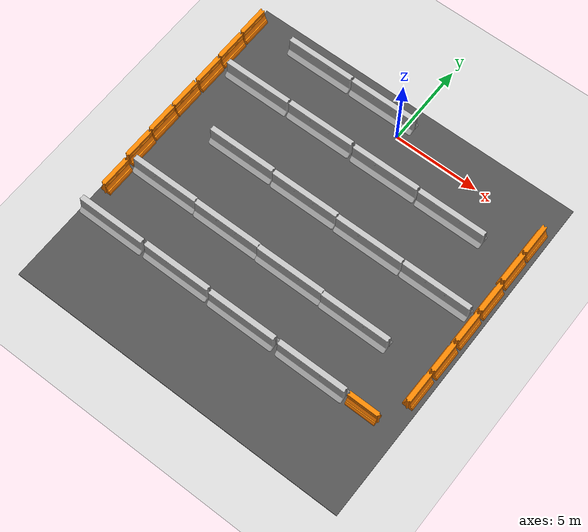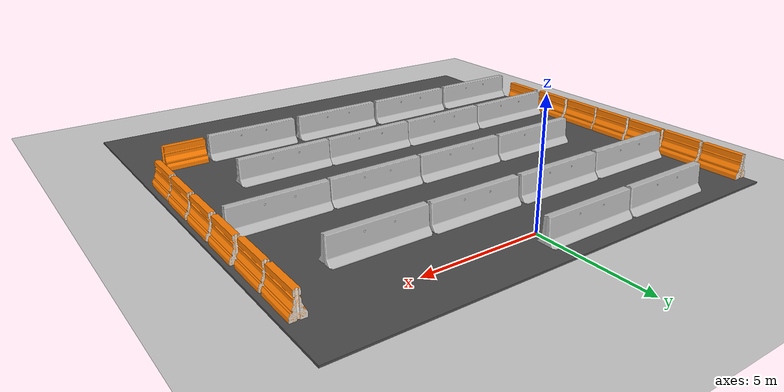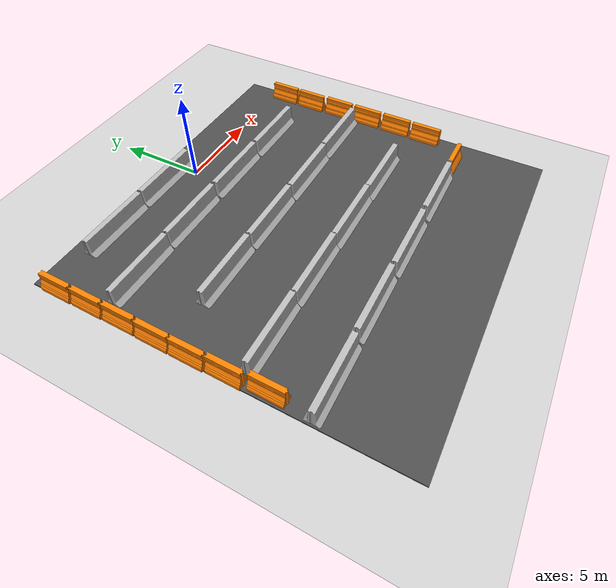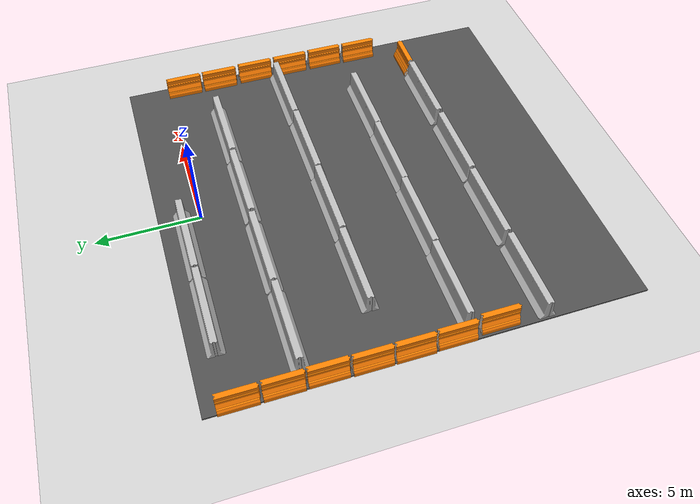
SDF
<sdf version="1.6">
 <world name="default">
  <model name="ground_plane">
   <static>1</static>
   <link name="link">
    <collision name="collision">
     <geometry><plane><normal>0 0 1</normal><size>100 100</size></plane></geometry>
     <surface>
      <contact><collide_bitmask>65535</collide_bitmask></contact>
      <friction><ode><mu>100</mu><mu2>50</mu2></ode></friction>
     </surface>
    </collision>
    <visual name="visual">
     <cast_shadows>0</cast_shadows>
     <geometry><plane><normal>0 0 1</normal><size>100 100</size></plane></geometry>
     <material>
      <script><uri>file://media/materials/scripts/gazebo.material</uri><name>Gazebo/Grey</name></script>
     </material>
    </visual>
   </link>
  </model>
  <model name="drc_practice_organge_jersey_barrier">
   <static>1</static>
   <link name="link">
    <visual name="visual">
     <geometry>
      <mesh><uri>model://drc_practice_orange_jersey_barrier/meshes/jersey_barrier.dae</uri></mesh>
     </geometry>
    </visual>
    <collision name="collision">
     <geometry>
      <mesh><uri>model://drc_practice_orange_jersey_barrier/meshes/jersey_barrier.dae</uri></mesh>
     </geometry>
    </collision>
   </link>
   <pose>-10.0317 -8.91698 0 0 -0 0</pose>
  </model>
  <model name="drc_practice_organge_jersey_barrier_clone">
   <static>1</static>
   <link name="link">
    <visual name="visual">
     <geometry>
      <mesh><uri>model://drc_practice_orange_jersey_barrier/meshes/jersey_barrier.dae</uri></mesh>
     </geometry>
    </visual>
    <collision name="collision">
     <geometry>
      <mesh><uri>model://drc_practice_orange_jersey_barrier/meshes/jersey_barrier.dae</uri></mesh>
     </geometry>
    </collision>
   </link>
   <pose>-10.0715 -7.03277 0 0 -0 0</pose>
  </model>
  <model name="drc_practice_organge_jersey_barrier_clone_0">
   <static>1</static>
   <link name="link">
    <visual name="visual">
     <geometry>
      <mesh><uri>model://drc_practice_orange_jersey_barrier/meshes/jersey_barrier.dae</uri></mesh>
     </geometry>
    </visual>
    <collision name="collision">
     <geometry>
      <mesh><uri>model://drc_practice_orange_jersey_barrier/meshes/jersey_barrier.dae</uri></mesh>
     </geometry>
    </collision>
   </link>
   <pose>-10.0681 -5.17272 0 0 -0 0</pose>
  </model>
  <model name="drc_practice_organge_jersey_barrier_clone_1">
   <static>1</static>
   <link name="link">
    <visual name="visual">
     <geometry>
      <mesh><uri>model://drc_practice_orange_jersey_barrier/meshes/jersey_barrier.dae</uri></mesh>
     </geometry>
    </visual>
    <collision name="collision">
     <geometry>
      <mesh><uri>model://drc_practice_orange_jersey_barrier/meshes/jersey_barrier.dae</uri></mesh>
     </geometry>
    </collision>
   </link>
   <pose>-10.0404 -3.26949 0 0 -0 0</pose>
  </model>
  <model name="drc_practice_organge_jersey_barrier_clone_2">
   <static>1</static>
   <link name="link">
    <visual name="visual">
     <geometry>
      <mesh><uri>model://drc_practice_orange_jersey_barrier/meshes/jersey_barrier.dae</uri></mesh>
     </geometry>
    </visual>
    <collision name="collision">
     <geometry>
      <mesh><uri>model://drc_practice_orange_jersey_barrier/meshes/jersey_barrier.dae</uri></mesh>
     </geometry>
    </collision>
   </link>
   <pose>-10.0581 -1.38628 0 0 -0 0</pose>
  </model>
  <model name="drc_practice_organge_jersey_barrier_clone_3">
   <static>1</static>
   <link name="link">
    <visual name="visual">
     <geometry>
      <mesh><uri>model://drc_practice_orange_jersey_barrier/meshes/jersey_barrier.dae</uri></mesh>
     </geometry>
    </visual>
    <collision name="collision">
     <geometry>
      <mesh><uri>model://drc_practice_orange_jersey_barrier/meshes/jersey_barrier.dae</uri></mesh>
     </geometry>
    </collision>
   </link>
   <pose>-10.0747 0.519144 0 0 -0 0</pose>
  </model>
  <model name="drc_practice_organge_jersey_barrier_clone_7">
   <static>1</static>
   <link name="link">
    <visual name="visual">
     <geometry>
      <mesh><uri>model://drc_practice_orange_jersey_barrier/meshes/jersey_barrier.dae</uri></mesh>
     </geometry>
    </visual>
    <collision name="collision">
     <geometry>
      <mesh><uri>model://drc_practice_orange_jersey_barrier/meshes/jersey_barrier.dae</uri></mesh>
     </geometry>
    </collision>
   </link>
   <pose>9.19887 -8.85647 0 0 -0 0</pose>
  </model>
  <model name="drc_practice_organge_jersey_barrier_clone_8">
   <static>1</static>
   <link name="link">
    <visual name="visual">
     <geometry>
      <mesh><uri>model://drc_practice_orange_jersey_barrier/meshes/jersey_barrier.dae</uri></mesh>
     </geometry>
    </visual>
    <collision name="collision">
     <geometry>
      <mesh><uri>model://drc_practice_orange_jersey_barrier/meshes/jersey_barrier.dae</uri></mesh>
     </geometry>
    </collision>
   </link>
   <pose>9.2043 -6.87317 0 0 -0 0</pose>
  </model>
  <model name="drc_practice_organge_jersey_barrier_clone_9">
   <static>1</static>
   <link name="link">
    <visual name="visual">
     <geometry>
      <mesh><uri>model://drc_practice_orange_jersey_barrier/meshes/jersey_barrier.dae</uri></mesh>
     </geometry>
    </visual>
    <collision name="collision">
     <geometry>
      <mesh><uri>model://drc_practice_orange_jersey_barrier/meshes/jersey_barrier.dae</uri></mesh>
     </geometry>
    </collision>
   </link>
   <pose>9.20732 -4.89311 0 0 -0 0</pose>
  </model>
  <model name="drc_practice_organge_jersey_barrier_clone_10">
   <static>1</static>
   <link name="link">
    <visual name="visual">
     <geometry>
      <mesh><uri>model://drc_practice_orange_jersey_barrier/meshes/jersey_barrier.dae</uri></mesh>
     </geometry>
    </visual>
    <collision name="collision">
     <geometry>
      <mesh><uri>model://drc_practice_orange_jersey_barrier/meshes/jersey_barrier.dae</uri></mesh>
     </geometry>
    </collision>
   </link>
   <pose>9.15103 -2.89169 0 0 -0 0</pose>
  </model>
  <model name="drc_practice_organge_jersey_barrier_clone_11">
   <static>1</static>
   <link name="link">
    <visual name="visual">
     <geometry>
      <mesh><uri>model://drc_practice_orange_jersey_barrier/meshes/jersey_barrier.dae</uri></mesh>
     </geometry>
    </visual>
    <collision name="collision">
     <geometry>
      <mesh><uri>model://drc_practice_orange_jersey_barrier/meshes/jersey_barrier.dae</uri></mesh>
     </geometry>
    </collision>
   </link>
   <pose>9.15252 -0.950869 0 0 -0 0</pose>
  </model>
  <model name="jersey_barrier_clone_6">
   <static>1</static>
   <link name="link">
    <visual name="visual">
     <geometry><mesh><uri>model://jersey_barrier/meshes/jersey_barrier.dae</uri></mesh></geometry>
    </visual>
    <collision name="upright">
     <pose>0 0 0.5715 0 -0 0</pose>
     <geometry><box><size>4.06542 0.3063 1.143</size></box></geometry>
    </collision>
    <collision name="base">
     <pose>0 0 0.032258 0 -0 0</pose>
     <geometry><box><size>4.06542 0.8107 0.064516</size></box></geometry>
    </collision>
    <collision name="base2">
     <pose>0 0 0.1 0 -0 0</pose>
     <geometry><box><size>4.06542 0.65 0.1</size></box></geometry>
    </collision>
    <collision name="base3">
     <pose>0 0 0.2 0 -0 0</pose>
     <geometry><box><size>4.06542 0.5 0.1</size></box></geometry>
    </collision>
    <collision name="left-angle">
     <pose>0 -0.224 0.2401 0.9 -0 0</pose>
     <geometry><box><size>4.06542 0.5 0.064516</size></box></geometry>
    </collision>
    <collision name="right-angle">
     <pose>0 0.224 0.2401 -0.9 0 0</pose>
     <geometry><box><size>4.06542 0.5 0.064516</size></box></geometry>
    </collision>
   </link>
   <pose>6.76823 -6.01536 0 0 -0 0</pose>
  </model>
  <model name="jersey_barrier_clone_7">
   <static>1</static>
   <link name="link">
    <visual name="visual">
     <geometry><mesh><uri>model://jersey_barrier/meshes/jersey_barrier.dae</uri></mesh></geometry>
    </visual>
    <collision name="upright">
     <pose>0 0 0.5715 0 -0 0</pose>
     <geometry><box><size>4.06542 0.3063 1.143</size></box></geometry>
    </collision>
    <collision name="base">
     <pose>0 0 0.032258 0 -0 0</pose>
     <geometry><box><size>4.06542 0.8107 0.064516</size></box></geometry>
    </collision>
    <collision name="base2">
     <pose>0 0 0.1 0 -0 0</pose>
     <geometry><box><size>4.06542 0.65 0.1</size></box></geometry>
    </collision>
    <collision name="base3">
     <pose>0 0 0.2 0 -0 0</pose>
     <geometry><box><size>4.06542 0.5 0.1</size></box></geometry>
    </collision>
    <collision name="left-angle">
     <pose>0 -0.224 0.2401 0.9 -0 0</pose>
     <geometry><box><size>4.06542 0.5 0.064516</size></box></geometry>
    </collision>
    <collision name="right-angle">
     <pose>0 0.224 0.2401 -0.9 0 0</pose>
     <geometry><box><size>4.06542 0.5 0.064516</size></box></geometry>
    </collision>
   </link>
   <pose>2.66171 -6.03079 0 0 -0 0</pose>
  </model>
  <model name="jersey_barrier_clone_8">
   <static>1</static>
   <link name="link">
    <visual name="visual">
     <geometry><mesh><uri>model://jersey_barrier/meshes/jersey_barrier.dae</uri></mesh></geometry>
    </visual>
    <collision name="upright">
     <pose>0 0 0.5715 0 -0 0</pose>
     <geometry><box><size>4.06542 0.3063 1.143</size></box></geometry>
    </collision>
    <collision name="base">
     <pose>0 0 0.032258 0 -0 0</pose>
     <geometry><box><size>4.06542 0.8107 0.064516</size></box></geometry>
    </collision>
    <collision name="base2">
     <pose>0 0 0.1 0 -0 0</pose>
     <geometry><box><size>4.06542 0.65 0.1</size></box></geometry>
    </collision>
    <collision name="base3">
     <pose>0 0 0.2 0 -0 0</pose>
     <geometry><box><size>4.06542 0.5 0.1</size></box></geometry>
    </collision>
    <collision name="left-angle">
     <pose>0 -0.224 0.2401 0.9 -0 0</pose>
     <geometry><box><size>4.06542 0.5 0.064516</size></box></geometry>
    </collision>
    <collision name="right-angle">
     <pose>0 0.224 0.2401 -0.9 0 0</pose>
     <geometry><box><size>4.06542 0.5 0.064516</size></box></geometry>
    </collision>
   </link>
   <pose>-1.44199 -5.9885 0 0 -0 0</pose>
  </model>
  <model name="jersey_barrier_clone_9">
   <static>1</static>
   <link name="link">
    <visual name="visual">
     <geometry><mesh><uri>model://jersey_barrier/meshes/jersey_barrier.dae</uri></mesh></geometry>
    </visual>
    <collision name="upright">
     <pose>0 0 0.5715 0 -0 0</pose>
     <geometry><box><size>4.06542 0.3063 1.143</size></box></geometry>
    </collision>
    <collision name="base">
     <pose>0 0 0.032258 0 -0 0</pose>
     <geometry><box><size>4.06542 0.8107 0.064516</size></box></geometry>
    </collision>
    <collision name="base2">
     <pose>0 0 0.1 0 -0 0</pose>
     <geometry><box><size>4.06542 0.65 0.1</size></box></geometry>
    </collision>
    <collision name="base3">
     <pose>0 0 0.2 0 -0 0</pose>
     <geometry><box><size>4.06542 0.5 0.1</size></box></geometry>
    </collision>
    <collision name="left-angle">
     <pose>0 -0.224 0.2401 0.9 -0 0</pose>
     <geometry><box><size>4.06542 0.5 0.064516</size></box></geometry>
    </collision>
    <collision name="right-angle">
     <pose>0 0.224 0.2401 -0.9 0 0</pose>
     <geometry><box><size>4.06542 0.5 0.064516</size></box></geometry>
    </collision>
   </link>
   <pose>-5.56722 -5.94639 0 0 -0 0</pose>
  </model>
  <model name="jersey_barrier_clone_9_clone">
   <static>1</static>
   <link name="link">
    <visual name="visual">
     <geometry><mesh><uri>model://jersey_barrier/meshes/jersey_barrier.dae</uri></mesh></geometry>
    </visual>
    <collision name="upright">
     <pose>0 0 0.5715 0 -0 0</pose>
     <geometry><box><size>4.06542 0.3063 1.143</size></box></geometry>
    </collision>
    <collision name="base">
     <pose>0 0 0.032258 0 -0 0</pose>
     <geometry><box><size>4.06542 0.8107 0.064516</size></box></geometry>
    </collision>
    <collision name="base2">
     <pose>0 0 0.1 0 -0 0</pose>
     <geometry><box><size>4.06542 0.65 0.1</size></box></geometry>
    </collision>
    <collision name="base3">
     <pose>0 0 0.2 0 -0 0</pose>
     <geometry><box><size>4.06542 0.5 0.1</size></box></geometry>
    </collision>
    <collision name="left-angle">
     <pose>0 -0.224 0.2401 0.9 -0 0</pose>
     <geometry><box><size>4.06542 0.5 0.064516</size></box></geometry>
    </collision>
    <collision name="right-angle">
     <pose>0 0.224 0.2401 -0.9 0 0</pose>
     <geometry><box><size>4.06542 0.5 0.064516</size></box></geometry>
    </collision>
   </link>
   <pose>-7.45063 -2.2681 0 0 -0 0</pose>
  </model>
  <model name="jersey_barrier_clone_9_clone_0">
   <static>1</static>
   <link name="link">
    <visual name="visual">
     <geometry><mesh><uri>model://jersey_barrier/meshes/jersey_barrier.dae</uri></mesh></geometry>
    </visual>
    <collision name="upright">
     <pose>0 0 0.5715 0 -0 0</pose>
     <geometry><box><size>4.06542 0.3063 1.143</size></box></geometry>
    </collision>
    <collision name="base">
     <pose>0 0 0.032258 0 -0 0</pose>
     <geometry><box><size>4.06542 0.8107 0.064516</size></box></geometry>
    </collision>
    <collision name="base2">
     <pose>0 0 0.1 0 -0 0</pose>
     <geometry><box><size>4.06542 0.65 0.1</size></box></geometry>
    </collision>
    <collision name="base3">
     <pose>0 0 0.2 0 -0 0</pose>
     <geometry><box><size>4.06542 0.5 0.1</size></box></geometry>
    </collision>
    <collision name="left-angle">
     <pose>0 -0.224 0.2401 0.9 -0 0</pose>
     <geometry><box><size>4.06542 0.5 0.064516</size></box></geometry>
    </collision>
    <collision name="right-angle">
     <pose>0 0.224 0.2401 -0.9 0 0</pose>
     <geometry><box><size>4.06542 0.5 0.064516</size></box></geometry>
    </collision>
   </link>
   <pose>-3.31169 -2.24733 0 0 -0 0</pose>
  </model>
  <model name="jersey_barrier_clone_9_clone_1">
   <static>1</static>
   <link name="link">
    <visual name="visual">
     <geometry><mesh><uri>model://jersey_barrier/meshes/jersey_barrier.dae</uri></mesh></geometry>
    </visual>
    <collision name="upright">
     <pose>0 0 0.5715 0 -0 0</pose>
     <geometry><box><size>4.06542 0.3063 1.143</size></box></geometry>
    </collision>
    <collision name="base">
     <pose>0 0 0.032258 0 -0 0</pose>
     <geometry><box><size>4.06542 0.8107 0.064516</size></box></geometry>
    </collision>
    <collision name="base2">
     <pose>0 0 0.1 0 -0 0</pose>
     <geometry><box><size>4.06542 0.65 0.1</size></box></geometry>
    </collision>
    <collision name="base3">
     <pose>0 0 0.2 0 -0 0</pose>
     <geometry><box><size>4.06542 0.5 0.1</size></box></geometry>
    </collision>
    <collision name="left-angle">
     <pose>0 -0.224 0.2401 0.9 -0 0</pose>
     <geometry><box><size>4.06542 0.5 0.064516</size></box></geometry>
    </collision>
    <collision name="right-angle">
     <pose>0 0.224 0.2401 -0.9 0 0</pose>
     <geometry><box><size>4.06542 0.5 0.064516</size></box></geometry>
    </collision>
   </link>
   <pose>0.887936 -2.28146 0 0 -0 0</pose>
  </model>
  <model name="jersey_barrier_clone_9_clone_2">
   <static>1</static>
   <link name="link">
    <visual name="visual">
     <geometry><mesh><uri>model://jersey_barrier/meshes/jersey_barrier.dae</uri></mesh></geometry>
    </visual>
    <collision name="upright">
     <pose>0 0 0.5715 0 -0 0</pose>
     <geometry><box><size>4.06542 0.3063 1.143</size></box></geometry>
    </collision>
    <collision name="base">
     <pose>0 0 0.032258 0 -0 0</pose>
     <geometry><box><size>4.06542 0.8107 0.064516</size></box></geometry>
    </collision>
    <collision name="base2">
     <pose>0 0 0.1 0 -0 0</pose>
     <geometry><box><size>4.06542 0.65 0.1</size></box></geometry>
    </collision>
    <collision name="base3">
     <pose>0 0 0.2 0 -0 0</pose>
     <geometry><box><size>4.06542 0.5 0.1</size></box></geometry>
    </collision>
    <collision name="left-angle">
     <pose>0 -0.224 0.2401 0.9 -0 0</pose>
     <geometry><box><size>4.06542 0.5 0.064516</size></box></geometry>
    </collision>
    <collision name="right-angle">
     <pose>0 0.224 0.2401 -0.9 0 0</pose>
     <geometry><box><size>4.06542 0.5 0.064516</size></box></geometry>
    </collision>
   </link>
   <pose>5.03883 -2.31675 0 0 -0 0</pose>
  </model>
  <model name="jersey_barrier_clone_9_clone_2_clone_1">
   <static>1</static>
   <link name="link">
    <visual name="visual">
     <geometry><mesh><uri>model://jersey_barrier/meshes/jersey_barrier.dae</uri></mesh></geometry>
    </visual>
    <collision name="upright">
     <pose>0 0 0.5715 0 -0 0</pose>
     <geometry><box><size>4.06542 0.3063 1.143</size></box></geometry>
    </collision>
    <collision name="base">
     <pose>0 0 0.032258 0 -0 0</pose>
     <geometry><box><size>4.06542 0.8107 0.064516</size></box></geometry>
    </collision>
    <collision name="base2">
     <pose>0 0 0.1 0 -0 0</pose>
     <geometry><box><size>4.06542 0.65 0.1</size></box></geometry>
    </collision>
    <collision name="base3">
     <pose>0 0 0.2 0 -0 0</pose>
     <geometry><box><size>4.06542 0.5 0.1</size></box></geometry>
    </collision>
    <collision name="left-angle">
     <pose>0 -0.224 0.2401 0.9 -0 0</pose>
     <geometry><box><size>4.06542 0.5 0.064516</size></box></geometry>
    </collision>
    <collision name="right-angle">
     <pose>0 0.224 0.2401 -0.9 0 0</pose>
     <geometry><box><size>4.06542 0.5 0.064516</size></box></geometry>
    </collision>
   </link>
   <pose>-1.54666 0.859967 0 0 -0 0</pose>
  </model>
  <model name="jersey_barrier_clone_9_clone_2_clone_2">
   <static>1</static>
   <link name="link">
    <visual name="visual">
     <geometry><mesh><uri>model://jersey_barrier/meshes/jersey_barrier.dae</uri></mesh></geometry>
    </visual>
    <collision name="upright">
     <pose>0 0 0.5715 0 -0 0</pose>
     <geometry><box><size>4.06542 0.3063 1.143</size></box></geometry>
    </collision>
    <collision name="base">
     <pose>0 0 0.032258 0 -0 0</pose>
     <geometry><box><size>4.06542 0.8107 0.064516</size></box></geometry>
    </collision>
    <collision name="base2">
     <pose>0 0 0.1 0 -0 0</pose>
     <geometry><box><size>4.06542 0.65 0.1</size></box></geometry>
    </collision>
    <collision name="base3">
     <pose>0 0 0.2 0 -0 0</pose>
     <geometry><box><size>4.06542 0.5 0.1</size></box></geometry>
    </collision>
    <collision name="left-angle">
     <pose>0 -0.224 0.2401 0.9 -0 0</pose>
     <geometry><box><size>4.06542 0.5 0.064516</size></box></geometry>
    </collision>
    <collision name="right-angle">
     <pose>0 0.224 0.2401 -0.9 0 0</pose>
     <geometry><box><size>4.06542 0.5 0.064516</size></box></geometry>
    </collision>
   </link>
   <pose>-5.68538 0.864009 0 0 -0 0</pose>
  </model>
  <model name="drc_practice_organge_jersey_barrier_clone_7_clone">
   <static>1</static>
   <link name="link">
    <visual name="visual">
     <geometry>
      <mesh><uri>model://drc_practice_orange_jersey_barrier/meshes/jersey_barrier.dae</uri></mesh>
     </geometry>
    </visual>
    <collision name="collision">
     <geometry>
      <mesh><uri>model://drc_practice_orange_jersey_barrier/meshes/jersey_barrier.dae</uri></mesh>
     </geometry>
    </collision>
   </link>
   <pose>9.16151 -10.8186 0 0 -0 0</pose>
  </model>
  <model name="drc_practice_organge_jersey_barrier_clone_17">
   <static>1</static>
   <link name="link">
    <visual name="visual">
     <geometry>
      <mesh><uri>model://drc_practice_orange_jersey_barrier/meshes/jersey_barrier.dae</uri></mesh>
     </geometry>
    </visual>
    <collision name="collision">
     <geometry>
      <mesh><uri>model://drc_practice_orange_jersey_barrier/meshes/jersey_barrier.dae</uri></mesh>
     </geometry>
    </collision>
   </link>
   <pose>-9.89662 -10.9301 0 0 -0 0</pose>
  </model>
  <model name="jersey_barrier_clone_5">
   <static>1</static>
   <link name="link">
    <visual name="visual">
     <geometry><mesh><uri>model://jersey_barrier/meshes/jersey_barrier.dae</uri></mesh></geometry>
    </visual>
    <collision name="upright">
     <pose>0 0 0.5715 0 -0 0</pose>
     <geometry><box><size>4.06542 0.3063 1.143</size></box></geometry>
    </collision>
    <collision name="base">
     <pose>0 0 0.032258 0 -0 0</pose>
     <geometry><box><size>4.06542 0.8107 0.064516</size></box></geometry>
    </collision>
    <collision name="base2">
     <pose>0 0 0.1 0 -0 0</pose>
     <geometry><box><size>4.06542 0.65 0.1</size></box></geometry>
    </collision>
    <collision name="base3">
     <pose>0 0 0.2 0 -0 0</pose>
     <geometry><box><size>4.06542 0.5 0.1</size></box></geometry>
    </collision>
    <collision name="left-angle">
     <pose>0 -0.224 0.2401 0.9 -0 0</pose>
     <geometry><box><size>4.06542 0.5 0.064516</size></box></geometry>
    </collision>
    <collision name="right-angle">
     <pose>0 0.224 0.2401 -0.9 0 0</pose>
     <geometry><box><size>4.06542 0.5 0.064516</size></box></geometry>
    </collision>
   </link>
   <pose>-8.2152 -13.0933 0 0 -0 0</pose>
  </model>
  <model name="jersey_barrier_clone_14">
   <static>1</static>
   <link name="link">
    <visual name="visual">
     <geometry><mesh><uri>model://jersey_barrier/meshes/jersey_barrier.dae</uri></mesh></geometry>
    </visual>
    <collision name="upright">
     <pose>0 0 0.5715 0 -0 0</pose>
     <geometry><box><size>4.06542 0.3063 1.143</size></box></geometry>
    </collision>
    <collision name="base">
     <pose>0 0 0.032258 0 -0 0</pose>
     <geometry><box><size>4.06542 0.8107 0.064516</size></box></geometry>
    </collision>
    <collision name="base2">
     <pose>0 0 0.1 0 -0 0</pose>
     <geometry><box><size>4.06542 0.65 0.1</size></box></geometry>
    </collision>
    <collision name="base3">
     <pose>0 0 0.2 0 -0 0</pose>
     <geometry><box><size>4.06542 0.5 0.1</size></box></geometry>
    </collision>
    <collision name="left-angle">
     <pose>0 -0.224 0.2401 0.9 -0 0</pose>
     <geometry><box><size>4.06542 0.5 0.064516</size></box></geometry>
    </collision>
    <collision name="right-angle">
     <pose>0 0.224 0.2401 -0.9 0 0</pose>
     <geometry><box><size>4.06542 0.5 0.064516</size></box></geometry>
    </collision>
   </link>
   <pose>-3.99172 -13.0688 0 0 -0 0</pose>
  </model>
  <model name="jersey_barrier_clone_15">
   <static>1</static>
   <link name="link">
    <visual name="visual">
     <geometry><mesh><uri>model://jersey_barrier/meshes/jersey_barrier.dae</uri></mesh></geometry>
    </visual>
    <collision name="upright">
     <pose>0 0 0.5715 0 -0 0</pose>
     <geometry><box><size>4.06542 0.3063 1.143</size></box></geometry>
    </collision>
    <collision name="base">
     <pose>0 0 0.032258 0 -0 0</pose>
     <geometry><box><size>4.06542 0.8107 0.064516</size></box></geometry>
    </collision>
    <collision name="base2">
     <pose>0 0 0.1 0 -0 0</pose>
     <geometry><box><size>4.06542 0.65 0.1</size></box></geometry>
    </collision>
    <collision name="base3">
     <pose>0 0 0.2 0 -0 0</pose>
     <geometry><box><size>4.06542 0.5 0.1</size></box></geometry>
    </collision>
    <collision name="left-angle">
     <pose>0 -0.224 0.2401 0.9 -0 0</pose>
     <geometry><box><size>4.06542 0.5 0.064516</size></box></geometry>
    </collision>
    <collision name="right-angle">
     <pose>0 0.224 0.2401 -0.9 0 0</pose>
     <geometry><box><size>4.06542 0.5 0.064516</size></box></geometry>
    </collision>
   </link>
   <pose>0.197914 -13.116 0 0 -0 0</pose>
  </model>
  <model name="jersey_barrier_clone_16">
   <static>1</static>
   <link name="link">
    <visual name="visual">
     <geometry><mesh><uri>model://jersey_barrier/meshes/jersey_barrier.dae</uri></mesh></geometry>
    </visual>
    <collision name="upright">
     <pose>0 0 0.5715 0 -0 0</pose>
     <geometry><box><size>4.06542 0.3063 1.143</size></box></geometry>
    </collision>
    <collision name="base">
     <pose>0 0 0.032258 0 -0 0</pose>
     <geometry><box><size>4.06542 0.8107 0.064516</size></box></geometry>
    </collision>
    <collision name="base2">
     <pose>0 0 0.1 0 -0 0</pose>
     <geometry><box><size>4.06542 0.65 0.1</size></box></geometry>
    </collision>
    <collision name="base3">
     <pose>0 0 0.2 0 -0 0</pose>
     <geometry><box><size>4.06542 0.5 0.1</size></box></geometry>
    </collision>
    <collision name="left-angle">
     <pose>0 -0.224 0.2401 0.9 -0 0</pose>
     <geometry><box><size>4.06542 0.5 0.064516</size></box></geometry>
    </collision>
    <collision name="right-angle">
     <pose>0 0.224 0.2401 -0.9 0 0</pose>
     <geometry><box><size>4.06542 0.5 0.064516</size></box></geometry>
    </collision>
   </link>
   <pose>4.49309 -13.1254 0 0 -0 0</pose>
  </model>
  <model name="drc_practice_organge_jersey_barrier_clone_17_clone_clone_clone">
   <static>1</static>
   <link name="link">
    <visual name="visual">
     <geometry>
      <mesh><uri>model://drc_practice_orange_jersey_barrier/meshes/jersey_barrier.dae</uri></mesh>
     </geometry>
    </visual>
    <collision name="collision">
     <geometry>
      <mesh><uri>model://drc_practice_orange_jersey_barrier/meshes/jersey_barrier.dae</uri></mesh>
     </geometry>
    </collision>
   </link>
   <pose>7.58124 -13.1266 0 0 -0 1.57</pose>
  </model>
  <model name="jersey_barrier_clone_0_clone_clone">
   <static>1</static>
   <link name="link">
    <visual name="visual">
     <geometry><mesh><uri>model://jersey_barrier/meshes/jersey_barrier.dae</uri></mesh></geometry>
    </visual>
    <collision name="upright">
     <pose>0 0 0.5715 0 -0 0</pose>
     <geometry><box><size>4.06542 0.3063 1.143</size></box></geometry>
    </collision>
    <collision name="base">
     <pose>0 0 0.032258 0 -0 0</pose>
     <geometry><box><size>4.06542 0.8107 0.064516</size></box></geometry>
    </collision>
    <collision name="base2">
     <pose>0 0 0.1 0 -0 0</pose>
     <geometry><box><size>4.06542 0.65 0.1</size></box></geometry>
    </collision>
    <collision name="base3">
     <pose>0 0 0.2 0 -0 0</pose>
     <geometry><box><size>4.06542 0.5 0.1</size></box></geometry>
    </collision>
    <collision name="left-angle">
     <pose>0 -0.224 0.2401 0.9 -0 0</pose>
     <geometry><box><size>4.06542 0.5 0.064516</size></box></geometry>
    </collision>
    <collision name="right-angle">
     <pose>0 0.224 0.2401 -0.9 0 0</pose>
     <geometry><box><size>4.06542 0.5 0.064516</size></box></geometry>
    </collision>
   </link>
   <pose>-7.58467 -9.68529 0 0 -0 0</pose>
  </model>
  <model name="jersey_barrier_clone_0_clone_clone_0">
   <static>1</static>
   <link name="link">
    <visual name="visual">
     <geometry><mesh><uri>model://jersey_barrier/meshes/jersey_barrier.dae</uri></mesh></geometry>
    </visual>
    <collision name="upright">
     <pose>0 0 0.5715 0 -0 0</pose>
     <geometry><box><size>4.06542 0.3063 1.143</size></box></geometry>
    </collision>
    <collision name="base">
     <pose>0 0 0.032258 0 -0 0</pose>
     <geometry><box><size>4.06542 0.8107 0.064516</size></box></geometry>
    </collision>
    <collision name="base2">
     <pose>0 0 0.1 0 -0 0</pose>
     <geometry><box><size>4.06542 0.65 0.1</size></box></geometry>
    </collision>
    <collision name="base3">
     <pose>0 0 0.2 0 -0 0</pose>
     <geometry><box><size>4.06542 0.5 0.1</size></box></geometry>
    </collision>
    <collision name="left-angle">
     <pose>0 -0.224 0.2401 0.9 -0 0</pose>
     <geometry><box><size>4.06542 0.5 0.064516</size></box></geometry>
    </collision>
    <collision name="right-angle">
     <pose>0 0.224 0.2401 -0.9 0 0</pose>
     <geometry><box><size>4.06542 0.5 0.064516</size></box></geometry>
    </collision>
   </link>
   <pose>-3.49796 -9.7248 0 0 -0 0</pose>
  </model>
  <model name="jersey_barrier_clone_0_clone_clone_0_clone">
   <static>1</static>
   <link name="link">
    <visual name="visual">
     <geometry><mesh><uri>model://jersey_barrier/meshes/jersey_barrier.dae</uri></mesh></geometry>
    </visual>
    <collision name="upright">
     <pose>0 0 0.5715 0 -0 0</pose>
     <geometry><box><size>4.06542 0.3063 1.143</size></box></geometry>
    </collision>
    <collision name="base">
     <pose>0 0 0.032258 0 -0 0</pose>
     <geometry><box><size>4.06542 0.8107 0.064516</size></box></geometry>
    </collision>
    <collision name="base2">
     <pose>0 0 0.1 0 -0 0</pose>
     <geometry><box><size>4.06542 0.65 0.1</size></box></geometry>
    </collision>
    <collision name="base3">
     <pose>0 0 0.2 0 -0 0</pose>
     <geometry><box><size>4.06542 0.5 0.1</size></box></geometry>
    </collision>
    <collision name="left-angle">
     <pose>0 -0.224 0.2401 0.9 -0 0</pose>
     <geometry><box><size>4.06542 0.5 0.064516</size></box></geometry>
    </collision>
    <collision name="right-angle">
     <pose>0 0.224 0.2401 -0.9 0 0</pose>
     <geometry><box><size>4.06542 0.5 0.064516</size></box></geometry>
    </collision>
   </link>
   <pose>0.555489 -9.76335 0 0 -0 0</pose>
  </model>
  <model name="jersey_barrier_clone_0_clone_clone_0_clone_0">
   <static>1</static>
   <link name="link">
    <visual name="visual">
     <geometry><mesh><uri>model://jersey_barrier/meshes/jersey_barrier.dae</uri></mesh></geometry>
    </visual>
    <collision name="upright">
     <pose>0 0 0.5715 0 -0 0</pose>
     <geometry><box><size>4.06542 0.3063 1.143</size></box></geometry>
    </collision>
    <collision name="base">
     <pose>0 0 0.032258 0 -0 0</pose>
     <geometry><box><size>4.06542 0.8107 0.064516</size></box></geometry>
    </collision>
    <collision name="base2">
     <pose>0 0 0.1 0 -0 0</pose>
     <geometry><box><size>4.06542 0.65 0.1</size></box></geometry>
    </collision>
    <collision name="base3">
     <pose>0 0 0.2 0 -0 0</pose>
     <geometry><box><size>4.06542 0.5 0.1</size></box></geometry>
    </collision>
    <collision name="left-angle">
     <pose>0 -0.224 0.2401 0.9 -0 0</pose>
     <geometry><box><size>4.06542 0.5 0.064516</size></box></geometry>
    </collision>
    <collision name="right-angle">
     <pose>0 0.224 0.2401 -0.9 0 0</pose>
     <geometry><box><size>4.06542 0.5 0.064516</size></box></geometry>
    </collision>
   </link>
   <pose>4.60877 -9.80286 0 0 -0 0</pose>
  </model>
  <model name="asphalt_plane">
   <static>1</static>
   <link name="link">
    <collision name="collision"><geometry><box><size>20 20 0.1</size></box></geometry></collision>
    <visual name="visual">
     <cast_shadows>0</cast_shadows>
     <geometry><box><size>20 20 0.1</size></box></geometry>
     <material>
      <script>
       <uri>model://asphalt_plane/materials/scripts</uri>
       <uri>model://asphalt_plane/materials/textures</uri>
       <name>vrc/asphalt</name>
      </script>
     </material>
    </visual>
   </link>
   <pose>-0.308483 -7.98775 0 0 -0 0</pose>
  </model>
 </world>
</sdf>
